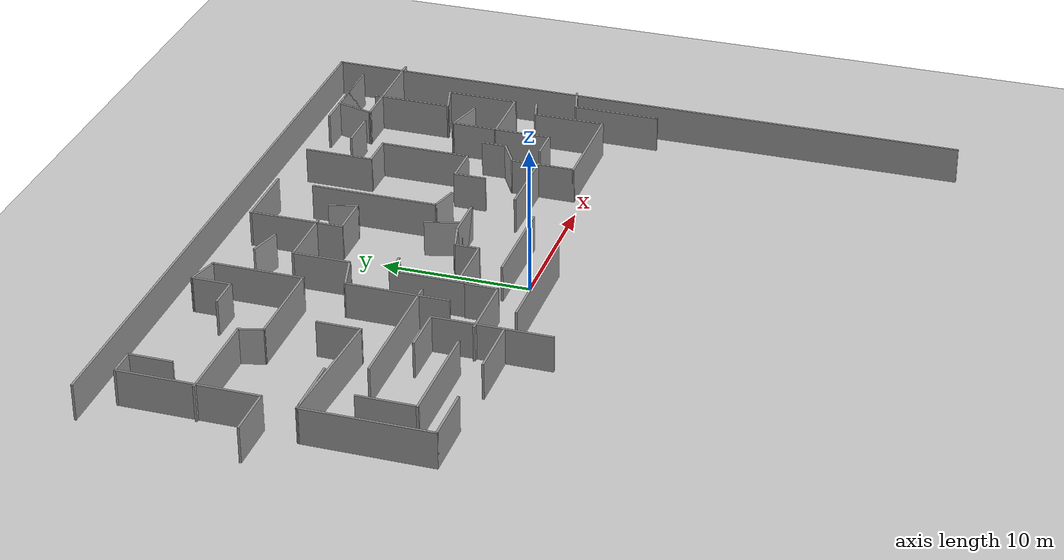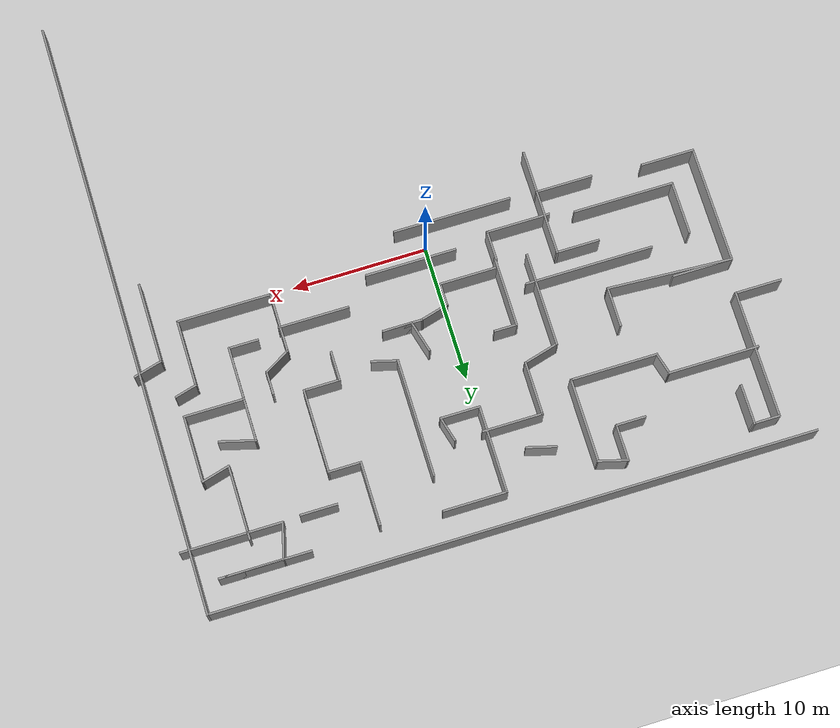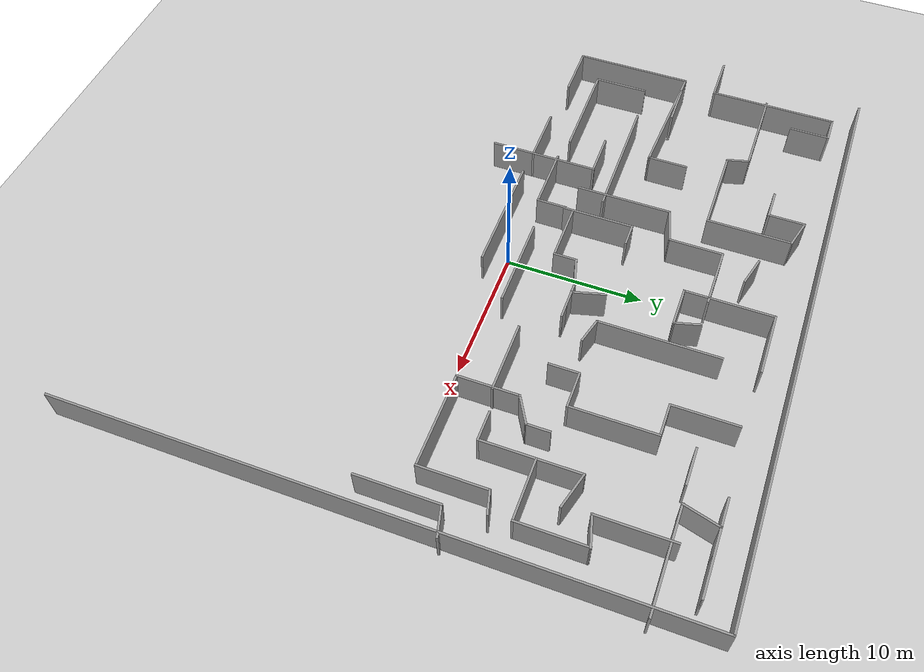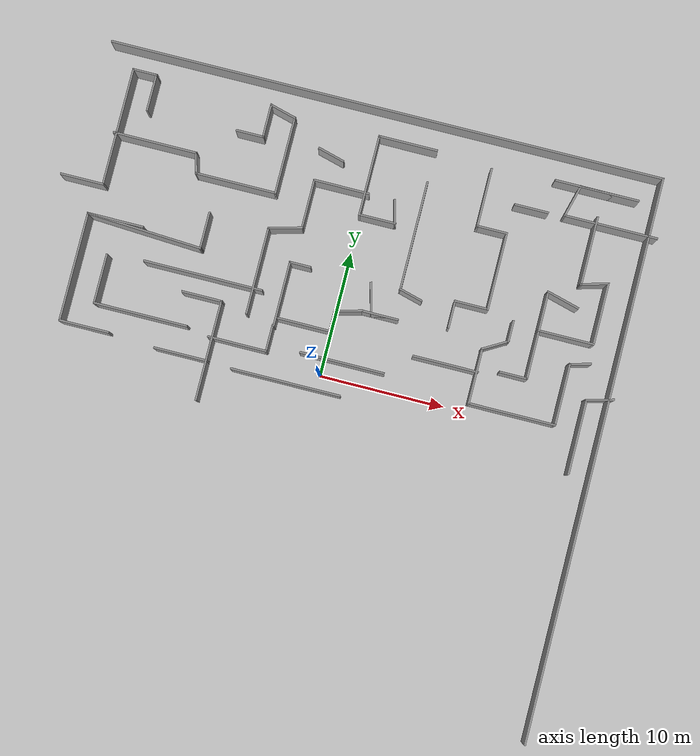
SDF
<sdf version="1.7">
 <world name="default">
  <model name="ground_plane">
   <static>1</static>
   <link name="link">
    <collision name="collision">
     <geometry><plane><normal>0 0 1</normal><size>100 100</size></plane></geometry>
     <surface>
      <contact><collide_bitmask>65535</collide_bitmask></contact>
      <friction><ode><mu>100</mu><mu2>50</mu2></ode></friction>
     </surface>
    </collision>
    <visual name="visual">
     <cast_shadows>0</cast_shadows>
     <geometry><plane><normal>0 0 1</normal><size>100 100</size></plane></geometry>
     <material>
      <script><uri>file://media/materials/scripts/gazebo.material</uri><name>Gazebo/Grey</name></script>
     </material>
    </visual>
   </link>
  </model>
  <model name="Untitled">
   <pose>-0.253478 -1.44353 0 0 -0 0</pose>
   <link name="Wall_100">
    <collision name="Wall_100_Collision">
     <geometry><box><size>2.25 0.15 2.5</size></box></geometry>
     <pose>0 0 1.25 0 -0 0</pose>
    </collision>
    <visual name="Wall_100_Visual">
     <pose>0 0 1.25 0 -0 0</pose>
     <geometry><box><size>2.25 0.15 2.5</size></box></geometry>
     <material>
      <script><uri>file://media/materials/scripts/gazebo.material</uri><name>Gazebo/Grey</name></script>
      <ambient>1 1 1 1</ambient>
     </material>
     <meta><layer>0</layer></meta>
    </visual>
    <pose>1.22343 6.73772 0 0 -0 0.261799</pose>
   </link>
   <link name="Wall_101">
    <collision name="Wall_101_Collision">
     <geometry><box><size>3 0.15 2.5</size></box></geometry>
     <pose>0 0 1.25 0 -0 0</pose>
    </collision>
    <visual name="Wall_101_Visual">
     <pose>0 0 1.25 0 -0 0</pose>
     <geometry><box><size>3 0.15 2.5</size></box></geometry>
     <material>
      <script><uri>file://media/materials/scripts/gazebo.material</uri><name>Gazebo/Grey</name></script>
      <ambient>1 1 1 1</ambient>
     </material>
     <meta><layer>0</layer></meta>
    </visual>
    <pose>3.66266 7.00948 0 0 -0 0</pose>
   </link>
   <link name="Wall_102">
    <collision name="Wall_102_Collision">
     <geometry><box><size>2.25 0.15 2.5</size></box></geometry>
     <pose>0 0 1.25 0 -0 0</pose>
    </collision>
    <visual name="Wall_102_Visual">
     <pose>0 0 1.25 0 -0 0</pose>
     <geometry><box><size>2.25 0.15 2.5</size></box></geometry>
     <material>
      <script><uri>file://media/materials/scripts/gazebo.material</uri><name>Gazebo/Grey</name></script>
      <ambient>1 1 1 1</ambient>
     </material>
     <meta><layer>0</layer></meta>
    </visual>
    <pose>4.03766 7.00948 0 0 -0 3.14159</pose>
   </link>
   <link name="Wall_103">
    <collision name="Wall_103_Collision">
     <geometry><box><size>2.5 0.15 2.5</size></box></geometry>
     <pose>0 0 1.25 0 -0 0</pose>
    </collision>
    <visual name="Wall_103_Visual">
     <pose>0 0 1.25 0 -0 0</pose>
     <geometry><box><size>2.5 0.15 2.5</size></box></geometry>
     <material>
      <script><uri>file://media/materials/scripts/gazebo.material</uri><name>Gazebo/Grey</name></script>
      <ambient>1 1 1 1</ambient>
     </material>
     <meta><layer>0</layer></meta>
    </visual>
    <pose>2.68354 8.14444 0 0 -0 1.8326</pose>
   </link>
   <link name="Wall_105">
    <collision name="Wall_105_Collision">
     <geometry><box><size>7.5 0.15 2.5</size></box></geometry>
     <pose>0 0 1.25 0 -0 0</pose>
    </collision>
    <visual name="Wall_105_Visual">
     <pose>0 0 1.25 0 -0 0</pose>
     <geometry><box><size>7.5 0.15 2.5</size></box></geometry>
     <material>
      <script><uri>file://media/materials/scripts/gazebo.material</uri><name>Gazebo/Grey</name></script>
      <ambient>1 1 1 1</ambient>
     </material>
     <meta><layer>0</layer></meta>
    </visual>
    <pose>-14.3033 2.52656 0 0 -0 3.14159</pose>
   </link>
   <link name="Wall_106">
    <collision name="Wall_106_Collision">
     <geometry><box><size>4 0.15 2.5</size></box></geometry>
     <pose>0 0 1.25 0 -0 0</pose>
    </collision>
    <visual name="Wall_106_Visual">
     <pose>0 0 1.25 0 -0 0</pose>
     <geometry><box><size>4 0.15 2.5</size></box></geometry>
     <material>
      <script><uri>file://media/materials/scripts/gazebo.material</uri><name>Gazebo/Grey</name></script>
      <ambient>1 1 1 1</ambient>
     </material>
     <meta><layer>0</layer></meta>
    </visual>
    <pose>-17.9783 4.45156 0 0 -0 1.5708</pose>
   </link>
   <link name="Wall_108">
    <collision name="Wall_108_Collision">
     <geometry><box><size>5.25 0.15 2.5</size></box></geometry>
     <pose>0 0 1.25 0 -0 0</pose>
    </collision>
    <visual name="Wall_108_Visual">
     <pose>0 0 1.25 0 -0 0</pose>
     <geometry><box><size>5.25 0.15 2.5</size></box></geometry>
     <material>
      <script><uri>file://media/materials/scripts/gazebo.material</uri><name>Gazebo/Grey</name></script>
      <ambient>1 1 1 1</ambient>
     </material>
     <meta><layer>0</layer></meta>
    </visual>
    <pose>9.51405 4.58523 0 0 -0 0</pose>
   </link>
   <link name="Wall_110">
    <collision name="Wall_110_Collision">
     <geometry><box><size>4.75 0.15 2.5</size></box></geometry>
     <pose>0 0 1.25 0 -0 0</pose>
    </collision>
    <visual name="Wall_110_Visual">
     <pose>0 0 1.25 0 -0 0</pose>
     <geometry><box><size>4.75 0.15 2.5</size></box></geometry>
     <material>
      <script><uri>file://media/materials/scripts/gazebo.material</uri><name>Gazebo/Grey</name></script>
      <ambient>1 1 1 1</ambient>
     </material>
     <meta><layer>0</layer></meta>
    </visual>
    <pose>2.5118 20.5868 0 0 -0 3.14159</pose>
   </link>
   <link name="Wall_111">
    <collision name="Wall_111_Collision">
     <geometry><box><size>6.5 0.15 2.5</size></box></geometry>
     <pose>0 0 1.25 0 -0 0</pose>
    </collision>
    <visual name="Wall_111_Visual">
     <pose>0 0 1.25 0 -0 0</pose>
     <geometry><box><size>6.5 0.15 2.5</size></box></geometry>
     <material>
      <script><uri>file://media/materials/scripts/gazebo.material</uri><name>Gazebo/Grey</name></script>
      <ambient>1 1 1 1</ambient>
     </material>
     <meta><layer>0</layer></meta>
    </visual>
    <pose>0.211799 17.4118 0 0 -0 -1.5708</pose>
   </link>
   <link name="Wall_112">
    <collision name="Wall_112_Collision">
     <geometry><box><size>3 0.15 2.5</size></box></geometry>
     <pose>0 0 1.25 0 -0 0</pose>
    </collision>
    <visual name="Wall_112_Visual">
     <pose>0 0 1.25 0 -0 0</pose>
     <geometry><box><size>3 0.15 2.5</size></box></geometry>
     <material>
      <script><uri>file://media/materials/scripts/gazebo.material</uri><name>Gazebo/Grey</name></script>
      <ambient>1 1 1 1</ambient>
     </material>
     <meta><layer>0</layer></meta>
    </visual>
    <pose>1.6368 14.2368 0 0 -0 0</pose>
   </link>
   <link name="Wall_113">
    <collision name="Wall_113_Collision">
     <geometry><box><size>2 0.15 2.5</size></box></geometry>
     <pose>0 0 1.25 0 -0 0</pose>
    </collision>
    <visual name="Wall_113_Visual">
     <pose>0 0 1.25 0 -0 0</pose>
     <geometry><box><size>2 0.15 2.5</size></box></geometry>
     <material>
      <script><uri>file://media/materials/scripts/gazebo.material</uri><name>Gazebo/Grey</name></script>
      <ambient>1 1 1 1</ambient>
     </material>
     <meta><layer>0</layer></meta>
    </visual>
    <pose>2.82239 15.1302 0 0 -0 1.8326</pose>
   </link>
   <link name="Wall_115">
    <collision name="Wall_115_Collision">
     <geometry><box><size>44.4115 0.15 2.5</size></box></geometry>
     <pose>0 0 1.25 0 -0 0</pose>
    </collision>
    <visual name="Wall_115_Visual">
     <pose>0 0 1.25 0 -0 0</pose>
     <geometry><box><size>44.4115 0.15 2.5</size></box></geometry>
     <material>
      <script><uri>file://media/materials/scripts/gazebo.material</uri><name>Gazebo/Grey</name></script>
      <ambient>1 1 1 1</ambient>
     </material>
     <meta><layer>0</layer></meta>
    </visual>
    <pose>0.273353 22.739 0 0 -0 0</pose>
   </link>
   <link name="Wall_117">
    <collision name="Wall_117_Collision">
     <geometry><box><size>2.75 0.15 2.5</size></box></geometry>
     <pose>0 0 1.25 0 -0 0</pose>
    </collision>
    <visual name="Wall_117_Visual">
     <pose>0 0 1.25 0 -0 0</pose>
     <geometry><box><size>2.75 0.15 2.5</size></box></geometry>
     <material>
      <script><uri>file://media/materials/scripts/gazebo.material</uri><name>Gazebo/Grey</name></script>
      <ambient>1 1 1 1</ambient>
     </material>
     <meta><layer>0</layer></meta>
    </visual>
    <pose>13.0566 17.9666 0 0 -0 3.14159</pose>
   </link>
   <link name="Wall_119">
    <collision name="Wall_119_Collision">
     <geometry><box><size>2.25 0.15 2.5</size></box></geometry>
     <pose>0 0 1.25 0 -0 0</pose>
    </collision>
    <visual name="Wall_119_Visual">
     <pose>0 0 1.25 0 -0 0</pose>
     <geometry><box><size>2.25 0.15 2.5</size></box></geometry>
     <material>
      <script><uri>file://media/materials/scripts/gazebo.material</uri><name>Gazebo/Grey</name></script>
      <ambient>1 1 1 1</ambient>
     </material>
     <meta><layer>0</layer></meta>
    </visual>
    <pose>-3.06372 18.2563 0 0 -0 -0.261799</pose>
   </link>
   <link name="Wall_144">
    <collision name="Wall_144_Collision">
     <geometry><box><size>4.25 0.15 2.5</size></box></geometry>
     <pose>0 0 1.25 0 -0 0</pose>
    </collision>
    <visual name="Wall_144_Visual">
     <pose>0 0 1.25 0 -0 0</pose>
     <geometry><box><size>4.25 0.15 2.5</size></box></geometry>
     <material>
      <script><uri>file://media/materials/scripts/gazebo.material</uri><name>Gazebo/Grey</name></script>
      <ambient>1 1 1 1</ambient>
     </material>
     <meta><layer>0</layer></meta>
    </visual>
    <pose>-10.5167 0.304825 0 0 -0 0</pose>
   </link>
   <link name="Wall_146">
    <collision name="Wall_146_Collision">
     <geometry><box><size>8 0.15 2.5</size></box></geometry>
     <pose>0 0 1.25 0 -0 0</pose>
    </collision>
    <visual name="Wall_146_Visual">
     <pose>0 0 1.25 0 -0 0</pose>
     <geometry><box><size>8 0.15 2.5</size></box></geometry>
     <material>
      <script><uri>file://media/materials/scripts/gazebo.material</uri><name>Gazebo/Grey</name></script>
      <ambient>1 1 1 1</ambient>
     </material>
     <meta><layer>0</layer></meta>
    </visual>
    <pose>-8.46674 1.12983 0 0 -0 1.5708</pose>
   </link>
   <link name="Wall_147">
    <collision name="Wall_147_Collision">
     <geometry><box><size>3.25 0.15 2.5</size></box></geometry>
     <pose>0 0 1.25 0 -0 0</pose>
    </collision>
    <visual name="Wall_147_Visual">
     <pose>0 0 1.25 0 -0 0</pose>
     <geometry><box><size>3.25 0.15 2.5</size></box></geometry>
     <material>
      <script><uri>file://media/materials/scripts/gazebo.material</uri><name>Gazebo/Grey</name></script>
      <ambient>1 1 1 1</ambient>
     </material>
     <meta><layer>0</layer></meta>
    </visual>
    <pose>-10.0167 5.05482 0 0 -0 3.14159</pose>
   </link>
   <link name="Wall_149">
    <collision name="Wall_149_Collision">
     <geometry><box><size>4.75 0.15 2.5</size></box></geometry>
     <pose>0 0 1.25 0 -0 0</pose>
    </collision>
    <visual name="Wall_149_Visual">
     <pose>0 0 1.25 0 -0 0</pose>
     <geometry><box><size>4.75 0.15 2.5</size></box></geometry>
     <material>
      <script><uri>file://media/materials/scripts/gazebo.material</uri><name>Gazebo/Grey</name></script>
      <ambient>1 1 1 1</ambient>
     </material>
     <meta><layer>0</layer></meta>
    </visual>
    <pose>-6.45675 2.15225 0 0 -0 0</pose>
   </link>
   <link name="Wall_150">
    <collision name="Wall_150_Collision">
     <geometry><box><size>2.25 0.15 2.5</size></box></geometry>
     <pose>0 0 1.25 0 -0 0</pose>
    </collision>
    <visual name="Wall_150_Visual">
     <pose>0 0 1.25 0 -0 0</pose>
     <geometry><box><size>2.25 0.15 2.5</size></box></geometry>
     <material>
      <script><uri>file://media/materials/scripts/gazebo.material</uri><name>Gazebo/Grey</name></script>
      <ambient>1 1 1 1</ambient>
     </material>
     <meta><layer>0</layer></meta>
    </visual>
    <pose>-4.15675 3.20225 0 0 -0 1.5708</pose>
   </link>
   <link name="Wall_166">
    <collision name="Wall_166_Collision">
     <geometry><box><size>6 0.15 2.5</size></box></geometry>
     <pose>0 0 1.25 0 -0 0</pose>
    </collision>
    <visual name="Wall_166_Visual">
     <pose>0 0 1.25 0 -0 0</pose>
     <geometry><box><size>6 0.15 2.5</size></box></geometry>
     <material>
      <script><uri>file://media/materials/scripts/gazebo.material</uri><name>Gazebo/Grey</name></script>
      <ambient>1 1 1 1</ambient>
     </material>
     <meta><layer>0</layer></meta>
    </visual>
    <pose>20.7198 1.61493 0 0 -0 1.5708</pose>
   </link>
   <link name="Wall_167">
    <collision name="Wall_167_Collision">
     <geometry><box><size>2.25 0.15 2.5</size></box></geometry>
     <pose>0 0 1.25 0 -0 0</pose>
    </collision>
    <visual name="Wall_167_Visual">
     <pose>0 0 1.25 0 -0 0</pose>
     <geometry><box><size>2.25 0.15 2.5</size></box></geometry>
     <material>
      <script><uri>file://media/materials/scripts/gazebo.material</uri><name>Gazebo/Grey</name></script>
      <ambient>1 1 1 1</ambient>
     </material>
     <meta><layer>0</layer></meta>
    </visual>
    <pose>21.734 4.81169 0 0 -0 0.261799</pose>
   </link>
   <link name="Wall_175">
    <collision name="Wall_175_Collision">
     <geometry><box><size>5.5 0.15 2.5</size></box></geometry>
     <pose>0 0 1.25 0 -0 0</pose>
    </collision>
    <visual name="Wall_175_Visual">
     <pose>0 0 1.25 0 -0 0</pose>
     <geometry><box><size>5.5 0.15 2.5</size></box></geometry>
     <material>
      <script><uri>file://media/materials/scripts/gazebo.material</uri><name>Gazebo/Grey</name></script>
      <ambient>1 1 1 1</ambient>
     </material>
     <meta><layer>0</layer></meta>
    </visual>
    <pose>18.1932 15.8531 0 0 -0 -1.5708</pose>
   </link>
   <link name="Wall_176">
    <collision name="Wall_176_Collision">
     <geometry><box><size>2.25 0.15 2.5</size></box></geometry>
     <pose>0 0 1.25 0 -0 0</pose>
    </collision>
    <visual name="Wall_176_Visual">
     <pose>0 0 1.25 0 -0 0</pose>
     <geometry><box><size>2.25 0.15 2.5</size></box></geometry>
     <material>
      <script><uri>file://media/materials/scripts/gazebo.material</uri><name>Gazebo/Grey</name></script>
      <ambient>1 1 1 1</ambient>
     </material>
     <meta><layer>0</layer></meta>
    </visual>
    <pose>19.2074 13.4498 0 0 -0 0.261799</pose>
   </link>
   <link name="Wall_177">
    <collision name="Wall_177_Collision">
     <geometry><box><size>5 0.15 2.5</size></box></geometry>
     <pose>0 0 1.25 0 -0 0</pose>
    </collision>
    <visual name="Wall_177_Visual">
     <pose>0 0 1.25 0 -0 0</pose>
     <geometry><box><size>5 0.15 2.5</size></box></geometry>
     <material>
      <script><uri>file://media/materials/scripts/gazebo.material</uri><name>Gazebo/Grey</name></script>
      <ambient>1 1 1 1</ambient>
     </material>
     <meta><layer>0</layer></meta>
    </visual>
    <pose>20.2216 11.2966 0 0 -0 -1.5708</pose>
   </link>
   <link name="Wall_178">
    <collision name="Wall_178_Collision">
     <geometry><box><size>4.5 0.15 2.5</size></box></geometry>
     <pose>0 0 1.25 0 -0 0</pose>
    </collision>
    <visual name="Wall_178_Visual">
     <pose>0 0 1.25 0 -0 0</pose>
     <geometry><box><size>4.5 0.15 2.5</size></box></geometry>
     <material>
      <script><uri>file://media/materials/scripts/gazebo.material</uri><name>Gazebo/Grey</name></script>
      <ambient>1 1 1 1</ambient>
     </material>
     <meta><layer>0</layer></meta>
    </visual>
    <pose>18.0466 8.87161 0 0 -0 3.14159</pose>
   </link>
   <link name="Wall_179">
    <collision name="Wall_179_Collision">
     <geometry><box><size>4 0.15 2.5</size></box></geometry>
     <pose>0 0 1.25 0 -0 0</pose>
    </collision>
    <visual name="Wall_179_Visual">
     <pose>0 0 1.25 0 -0 0</pose>
     <geometry><box><size>4 0.15 2.5</size></box></geometry>
     <material>
      <script><uri>file://media/materials/scripts/gazebo.material</uri><name>Gazebo/Grey</name></script>
      <ambient>1 1 1 1</ambient>
     </material>
     <meta><layer>0</layer></meta>
    </visual>
    <pose>15.8716 6.94661 0 0 -0 -1.5708</pose>
   </link>
   <link name="Wall_180">
    <collision name="Wall_180_Collision">
     <geometry><box><size>2.25 0.15 2.5</size></box></geometry>
     <pose>0 0 1.25 0 -0 0</pose>
    </collision>
    <visual name="Wall_180_Visual">
     <pose>0 0 1.25 0 -0 0</pose>
     <geometry><box><size>2.25 0.15 2.5</size></box></geometry>
     <material>
      <script><uri>file://media/materials/scripts/gazebo.material</uri><name>Gazebo/Grey</name></script>
      <ambient>1 1 1 1</ambient>
     </material>
     <meta><layer>0</layer></meta>
    </visual>
    <pose>14.8216 5.02161 0 0 -0 3.14159</pose>
   </link>
   <link name="Wall_182">
    <collision name="Wall_182_Collision">
     <geometry><box><size>3.25 0.15 2.5</size></box></geometry>
     <pose>0 0 1.25 0 -0 0</pose>
    </collision>
    <visual name="Wall_182_Visual">
     <pose>0 0 1.25 0 -0 0</pose>
     <geometry><box><size>3.25 0.15 2.5</size></box></geometry>
     <material>
      <script><uri>file://media/materials/scripts/gazebo.material</uri><name>Gazebo/Grey</name></script>
      <ambient>1 1 1 1</ambient>
     </material>
     <meta><layer>0</layer></meta>
    </visual>
    <pose>15.8716 10.4216 0 0 -0 1.5708</pose>
   </link>
   <link name="Wall_183">
    <collision name="Wall_183_Collision">
     <geometry><box><size>2.75 0.15 2.5</size></box></geometry>
     <pose>0 0 1.25 0 -0 0</pose>
    </collision>
    <visual name="Wall_183_Visual">
     <pose>0 0 1.25 0 -0 0</pose>
     <geometry><box><size>2.75 0.15 2.5</size></box></geometry>
     <material>
      <script><uri>file://media/materials/scripts/gazebo.material</uri><name>Gazebo/Grey</name></script>
      <ambient>1 1 1 1</ambient>
     </material>
     <meta><layer>0</layer></meta>
    </visual>
    <pose>17.1273 11.6351 0 0 -0 -0.261799</pose>
   </link>
   <link name="Wall_185">
    <collision name="Wall_185_Collision">
     <geometry><box><size>4.75 0.15 2.5</size></box></geometry>
     <pose>0 0 1.25 0 -0 0</pose>
    </collision>
    <visual name="Wall_185_Visual">
     <pose>0 0 1.25 0 -0 0</pose>
     <geometry><box><size>4.75 0.15 2.5</size></box></geometry>
     <material>
      <script><uri>file://media/materials/scripts/gazebo.material</uri><name>Gazebo/Grey</name></script>
      <ambient>1 1 1 1</ambient>
     </material>
     <meta><layer>0</layer></meta>
    </visual>
    <pose>9.30346 17.9125 0 0 -0 -1.5708</pose>
   </link>
   <link name="Wall_186">
    <collision name="Wall_186_Collision">
     <geometry><box><size>2.5 0.15 2.5</size></box></geometry>
     <pose>0 0 1.25 0 -0 0</pose>
    </collision>
    <visual name="Wall_186_Visual">
     <pose>0 0 1.25 0 -0 0</pose>
     <geometry><box><size>2.5 0.15 2.5</size></box></geometry>
     <material>
      <script><uri>file://media/materials/scripts/gazebo.material</uri><name>Gazebo/Grey</name></script>
      <ambient>1 1 1 1</ambient>
     </material>
     <meta><layer>0</layer></meta>
    </visual>
    <pose>10.4785 15.6125 0 0 -0 0</pose>
   </link>
   <link name="Wall_187">
    <collision name="Wall_187_Collision">
     <geometry><box><size>6.25 0.15 2.5</size></box></geometry>
     <pose>0 0 1.25 0 -0 0</pose>
    </collision>
    <visual name="Wall_187_Visual">
     <pose>0 0 1.25 0 -0 0</pose>
     <geometry><box><size>6.25 0.15 2.5</size></box></geometry>
     <material>
      <script><uri>file://media/materials/scripts/gazebo.material</uri><name>Gazebo/Grey</name></script>
      <ambient>1 1 1 1</ambient>
     </material>
     <meta><layer>0</layer></meta>
    </visual>
    <pose>11.6535 12.5625 0 0 -0 -1.5708</pose>
   </link>
   <link name="Wall_188">
    <collision name="Wall_188_Collision">
     <geometry><box><size>2.75 0.15 2.5</size></box></geometry>
     <pose>0 0 1.25 0 -0 0</pose>
    </collision>
    <visual name="Wall_188_Visual">
     <pose>0 0 1.25 0 -0 0</pose>
     <geometry><box><size>2.75 0.15 2.5</size></box></geometry>
     <material>
      <script><uri>file://media/materials/scripts/gazebo.material</uri><name>Gazebo/Grey</name></script>
      <ambient>1 1 1 1</ambient>
     </material>
     <meta><layer>0</layer></meta>
    </visual>
    <pose>10.3535 9.51246 0 0 -0 3.14159</pose>
   </link>
   <link name="Wall_189">
    <collision name="Wall_189_Collision">
     <geometry><box><size>2.25 0.15 2.5</size></box></geometry>
     <pose>0 0 1.25 0 -0 0</pose>
    </collision>
    <visual name="Wall_189_Visual">
     <pose>0 0 1.25 0 -0 0</pose>
     <geometry><box><size>2.25 0.15 2.5</size></box></geometry>
     <material>
      <script><uri>file://media/materials/scripts/gazebo.material</uri><name>Gazebo/Grey</name></script>
      <ambient>1 1 1 1</ambient>
     </material>
     <meta><layer>0</layer></meta>
    </visual>
    <pose>9.05346 8.46246 0 0 -0 -1.5708</pose>
   </link>
   <link name="Wall_19">
    <collision name="Wall_19_Collision">
     <geometry><box><size>3 0.15 2.5</size></box></geometry>
     <pose>0 0 1.25 0 -0 0</pose>
    </collision>
    <visual name="Wall_19_Visual">
     <pose>0 0 1.25 0 -0 0</pose>
     <geometry><box><size>3 0.15 2.5</size></box></geometry>
     <material>
      <script><uri>file://media/materials/scripts/gazebo.material</uri><name>Gazebo/Grey</name></script>
      <ambient>1 1 1 1</ambient>
     </material>
     <meta><layer>0</layer></meta>
    </visual>
    <pose>-17.8336 19.5788 0 0 -0 1.5708</pose>
   </link>
   <link name="Wall_191">
    <collision name="Wall_191_Collision">
     <geometry><box><size>3 0.15 2.5</size></box></geometry>
     <pose>0 0 1.25 0 -0 0</pose>
    </collision>
    <visual name="Wall_191_Visual">
     <pose>0 0 1.25 0 -0 0</pose>
     <geometry><box><size>3 0.15 2.5</size></box></geometry>
     <material>
      <script><uri>file://media/materials/scripts/gazebo.material</uri><name>Gazebo/Grey</name></script>
      <ambient>1 1 1 1</ambient>
     </material>
     <meta><layer>0</layer></meta>
    </visual>
    <pose>-11.0962 10.0849 0 0 -0 -1.5708</pose>
   </link>
   <link name="Wall_192">
    <collision name="Wall_192_Collision">
     <geometry><box><size>9.28666 0.15 2.5</size></box></geometry>
     <pose>0 0 1.25 0 -0 0</pose>
    </collision>
    <visual name="Wall_192_Visual">
     <pose>0 0 1.25 0 -0 0</pose>
     <geometry><box><size>9.28666 0.15 2.5</size></box></geometry>
     <material>
      <script><uri>file://media/materials/scripts/gazebo.material</uri><name>Gazebo/Grey</name></script>
      <ambient>1 1 1 1</ambient>
     </material>
     <meta><layer>0</layer></meta>
    </visual>
    <pose>-15.6573 8.91517 0 0 -0 3.08568</pose>
   </link>
   <link name="Wall_193">
    <collision name="Wall_193_Collision">
     <geometry><box><size>8.75 0.15 2.5</size></box></geometry>
     <pose>0 0 1.25 0 -0 0</pose>
    </collision>
    <visual name="Wall_193_Visual">
     <pose>0 0 1.25 0 -0 0</pose>
     <geometry><box><size>8.75 0.15 2.5</size></box></geometry>
     <material>
      <script><uri>file://media/materials/scripts/gazebo.material</uri><name>Gazebo/Grey</name></script>
      <ambient>1 1 1 1</ambient>
     </material>
     <meta><layer>0</layer></meta>
    </visual>
    <pose>-20.2185 4.87047 0 0 -0 -1.5708</pose>
   </link>
   <link name="Wall_20">
    <collision name="Wall_20_Collision">
     <geometry><box><size>2 0.15 2.5</size></box></geometry>
     <pose>0 0 1.25 0 -0 0</pose>
    </collision>
    <visual name="Wall_20_Visual">
     <pose>0 0 1.25 0 -0 0</pose>
     <geometry><box><size>2 0.15 2.5</size></box></geometry>
     <material>
      <script><uri>file://media/materials/scripts/gazebo.material</uri><name>Gazebo/Grey</name></script>
      <ambient>1 1 1 1</ambient>
     </material>
     <meta><layer>0</layer></meta>
    </visual>
    <pose>-18.7586 21.0038 0 0 -0 3.14159</pose>
   </link>
   <link name="Wall_21">
    <collision name="Wall_21_Collision">
     <geometry><box><size>9.5 0.15 2.5</size></box></geometry>
     <pose>0 0 1.25 0 -0 0</pose>
    </collision>
    <visual name="Wall_21_Visual">
     <pose>0 0 1.25 0 -0 0</pose>
     <geometry><box><size>9.5 0.15 2.5</size></box></geometry>
     <material>
      <script><uri>file://media/materials/scripts/gazebo.material</uri><name>Gazebo/Grey</name></script>
      <ambient>1 1 1 1</ambient>
     </material>
     <meta><layer>0</layer></meta>
    </visual>
    <pose>-19.6836 16.3288 0 0 -0 -1.5708</pose>
   </link>
   <link name="Wall_22">
    <collision name="Wall_22_Collision">
     <geometry><box><size>3.5 0.15 2.5</size></box></geometry>
     <pose>0 0 1.25 0 -0 0</pose>
    </collision>
    <visual name="Wall_22_Visual">
     <pose>0 0 1.25 0 -0 0</pose>
     <geometry><box><size>3.5 0.15 2.5</size></box></geometry>
     <material>
      <script><uri>file://media/materials/scripts/gazebo.material</uri><name>Gazebo/Grey</name></script>
      <ambient>1 1 1 1</ambient>
     </material>
     <meta><layer>0</layer></meta>
    </visual>
    <pose>-21.3586 11.6538 0 0 -0 3.14159</pose>
   </link>
   <link name="Wall_24">
    <collision name="Wall_24_Collision">
     <geometry><box><size>6.75 0.15 2.5</size></box></geometry>
     <pose>0 0 1.25 0 -0 0</pose>
    </collision>
    <visual name="Wall_24_Visual">
     <pose>0 0 1.25 0 -0 0</pose>
     <geometry><box><size>6.75 0.15 2.5</size></box></geometry>
     <material>
      <script><uri>file://media/materials/scripts/gazebo.material</uri><name>Gazebo/Grey</name></script>
      <ambient>1 1 1 1</ambient>
     </material>
     <meta><layer>0</layer></meta>
    </visual>
    <pose>-16.5923 15.8144 0 0 -0 0</pose>
   </link>
   <link name="Wall_25">
    <collision name="Wall_25_Collision">
     <geometry><box><size>1.75 0.15 2.5</size></box></geometry>
     <pose>0 0 1.25 0 -0 0</pose>
    </collision>
    <visual name="Wall_25_Visual">
     <pose>0 0 1.25 0 -0 0</pose>
     <geometry><box><size>1.75 0.15 2.5</size></box></geometry>
     <material>
      <script><uri>file://media/materials/scripts/gazebo.material</uri><name>Gazebo/Grey</name></script>
      <ambient>1 1 1 1</ambient>
     </material>
     <meta><layer>0</layer></meta>
    </visual>
    <pose>-13.0853 15.0416 0 0 -0 -1.309</pose>
   </link>
   <link name="Wall_26">
    <collision name="Wall_26_Collision">
     <geometry><box><size>6.5 0.15 2.5</size></box></geometry>
     <pose>0 0 1.25 0 -0 0</pose>
    </collision>
    <visual name="Wall_26_Visual">
     <pose>0 0 1.25 0 -0 0</pose>
     <geometry><box><size>6.5 0.15 2.5</size></box></geometry>
     <material>
      <script><uri>file://media/materials/scripts/gazebo.material</uri><name>Gazebo/Grey</name></script>
      <ambient>1 1 1 1</ambient>
     </material>
     <meta><layer>0</layer></meta>
    </visual>
    <pose>-9.70321 14.2689 0 0 -0 0</pose>
   </link>
   <link name="Wall_27">
    <collision name="Wall_27_Collision">
     <geometry><box><size>6.25 0.15 2.5</size></box></geometry>
     <pose>0 0 1.25 0 -0 0</pose>
    </collision>
    <visual name="Wall_27_Visual">
     <pose>0 0 1.25 0 -0 0</pose>
     <geometry><box><size>6.25 0.15 2.5</size></box></geometry>
     <material>
      <script><uri>file://media/materials/scripts/gazebo.material</uri><name>Gazebo/Grey</name></script>
      <ambient>1 1 1 1</ambient>
     </material>
     <meta><layer>0</layer></meta>
    </visual>
    <pose>-6.52821 17.3189 0 0 -0 1.5708</pose>
   </link>
   <link name="Wall_28">
    <collision name="Wall_28_Collision">
     <geometry><box><size>2.25 0.15 2.5</size></box></geometry>
     <pose>0 0 1.25 0 -0 0</pose>
    </collision>
    <visual name="Wall_28_Visual">
     <pose>0 0 1.25 0 -0 0</pose>
     <geometry><box><size>2.25 0.15 2.5</size></box></geometry>
     <material>
      <script><uri>file://media/materials/scripts/gazebo.material</uri><name>Gazebo/Grey</name></script>
      <ambient>1 1 1 1</ambient>
     </material>
     <meta><layer>0</layer></meta>
    </visual>
    <pose>-7.54243 20.6407 0 0 -0 2.87979</pose>
   </link>
   <link name="Wall_29">
    <collision name="Wall_29_Collision">
     <geometry><box><size>2.75 0.15 2.5</size></box></geometry>
     <pose>0 0 1.25 0 -0 0</pose>
    </collision>
    <visual name="Wall_29_Visual">
     <pose>0 0 1.25 0 -0 0</pose>
     <geometry><box><size>2.75 0.15 2.5</size></box></geometry>
     <material>
      <script><uri>file://media/materials/scripts/gazebo.material</uri><name>Gazebo/Grey</name></script>
      <ambient>1 1 1 1</ambient>
     </material>
     <meta><layer>0</layer></meta>
    </visual>
    <pose>-8.55665 19.6124 0 0 -0 -1.5708</pose>
   </link>
   <link name="Wall_30">
    <collision name="Wall_30_Collision">
     <geometry><box><size>2.25 0.15 2.5</size></box></geometry>
     <pose>0 0 1.25 0 -0 0</pose>
    </collision>
    <visual name="Wall_30_Visual">
     <pose>0 0 1.25 0 -0 0</pose>
     <geometry><box><size>2.25 0.15 2.5</size></box></geometry>
     <material>
      <script><uri>file://media/materials/scripts/gazebo.material</uri><name>Gazebo/Grey</name></script>
      <ambient>1 1 1 1</ambient>
     </material>
     <meta><layer>0</layer></meta>
    </visual>
    <pose>-9.60665 18.3124 0 0 -0 3.14159</pose>
   </link>
   <link name="Wall_32">
    <collision name="Wall_32_Collision">
     <geometry><box><size>4.5 0.15 2.5</size></box></geometry>
     <pose>0 0 1.25 0 -0 0</pose>
    </collision>
    <visual name="Wall_32_Visual">
     <pose>0 0 1.25 0 -0 0</pose>
     <geometry><box><size>4.5 0.15 2.5</size></box></geometry>
     <material>
      <script><uri>file://media/materials/scripts/gazebo.material</uri><name>Gazebo/Grey</name></script>
      <ambient>1 1 1 1</ambient>
     </material>
     <meta><layer>0</layer></meta>
    </visual>
    <pose>-1.66771 16.0015 0 0 -0 3.14159</pose>
   </link>
   <link name="Wall_33">
    <collision name="Wall_33_Collision">
     <geometry><box><size>4 0.15 2.5</size></box></geometry>
     <pose>0 0 1.25 0 -0 0</pose>
    </collision>
    <visual name="Wall_33_Visual">
     <pose>0 0 1.25 0 -0 0</pose>
     <geometry><box><size>4 0.15 2.5</size></box></geometry>
     <material>
      <script><uri>file://media/materials/scripts/gazebo.material</uri><name>Gazebo/Grey</name></script>
      <ambient>1 1 1 1</ambient>
     </material>
     <meta><layer>0</layer></meta>
    </visual>
    <pose>-3.84271 14.0765 0 0 -0 -1.5708</pose>
   </link>
   <link name="Wall_34">
    <collision name="Wall_34_Collision">
     <geometry><box><size>2.75 0.15 2.5</size></box></geometry>
     <pose>0 0 1.25 0 -0 0</pose>
    </collision>
    <visual name="Wall_34_Visual">
     <pose>0 0 1.25 0 -0 0</pose>
     <geometry><box><size>2.75 0.15 2.5</size></box></geometry>
     <material>
      <script><uri>file://media/materials/scripts/gazebo.material</uri><name>Gazebo/Grey</name></script>
      <ambient>1 1 1 1</ambient>
     </material>
     <meta><layer>0</layer></meta>
    </visual>
    <pose>-5.09841 11.8151 0 0 -0 -2.87979</pose>
   </link>
   <link name="Wall_35">
    <collision name="Wall_35_Collision">
     <geometry><box><size>7 0.15 2.5</size></box></geometry>
     <pose>0 0 1.25 0 -0 0</pose>
    </collision>
    <visual name="Wall_35_Visual">
     <pose>0 0 1.25 0 -0 0</pose>
     <geometry><box><size>7 0.15 2.5</size></box></geometry>
     <material>
      <script><uri>file://media/materials/scripts/gazebo.material</uri><name>Gazebo/Grey</name></script>
      <ambient>1 1 1 1</ambient>
     </material>
     <meta><layer>0</layer></meta>
    </visual>
    <pose>-6.35411 8.0536 0 0 -0 -1.5708</pose>
   </link>
   <link name="Wall_37">
    <collision name="Wall_37_Collision">
     <geometry><box><size>9.5 0.15 2.5</size></box></geometry>
     <pose>0 0 1.25 0 -0 0</pose>
    </collision>
    <visual name="Wall_37_Visual">
     <pose>0 0 1.25 0 -0 0</pose>
     <geometry><box><size>9.5 0.15 2.5</size></box></geometry>
     <material>
      <script><uri>file://media/materials/scripts/gazebo.material</uri><name>Gazebo/Grey</name></script>
      <ambient>1 1 1 1</ambient>
     </material>
     <meta><layer>0</layer></meta>
    </visual>
    <pose>-10.3514 6.64391 0 0 -0 0</pose>
   </link>
   <link name="Wall_39">
    <collision name="Wall_39_Collision">
     <geometry><box><size>8.75 0.15 2.5</size></box></geometry>
     <pose>0 0 1.25 0 -0 0</pose>
    </collision>
    <visual name="Wall_39_Visual">
     <pose>0 0 1.25 0 -0 0</pose>
     <geometry><box><size>8.75 0.15 2.5</size></box></geometry>
     <material>
      <script><uri>file://media/materials/scripts/gazebo.material</uri><name>Gazebo/Grey</name></script>
      <ambient>1 1 1 1</ambient>
     </material>
     <meta><layer>0</layer></meta>
    </visual>
    <pose>-2.11735 0.187152 0 0 -0 0</pose>
   </link>
   <link name="Wall_44">
    <collision name="Wall_44_Collision">
     <geometry><box><size>1.75 0.15 2.5</size></box></geometry>
     <pose>0 0 1.25 0 -0 0</pose>
    </collision>
    <visual name="Wall_44_Visual">
     <pose>0 0 1.25 0 -0 0</pose>
     <geometry><box><size>1.75 0.15 2.5</size></box></geometry>
     <material>
      <script><uri>file://media/materials/scripts/gazebo.material</uri><name>Gazebo/Grey</name></script>
      <ambient>1 1 1 1</ambient>
     </material>
     <meta><layer>0</layer></meta>
    </visual>
    <pose>13.7951 8.27689 0 0 -0 -1.5708</pose>
   </link>
   <link name="Wall_45">
    <collision name="Wall_45_Collision">
     <geometry><box><size>2.25 0.15 2.5</size></box></geometry>
     <pose>0 0 1.25 0 -0 0</pose>
    </collision>
    <visual name="Wall_45_Visual">
     <pose>0 0 1.25 0 -0 0</pose>
     <geometry><box><size>2.25 0.15 2.5</size></box></geometry>
     <material>
      <script><uri>file://media/materials/scripts/gazebo.material</uri><name>Gazebo/Grey</name></script>
      <ambient>1 1 1 1</ambient>
     </material>
     <meta><layer>0</layer></meta>
    </visual>
    <pose>12.8858 6.95189 0 0 -0 -2.61799</pose>
   </link>
   <link name="Wall_46">
    <collision name="Wall_46_Collision">
     <geometry><box><size>4.5 0.15 2.5</size></box></geometry>
     <pose>0 0 1.25 0 -0 0</pose>
    </collision>
    <visual name="Wall_46_Visual">
     <pose>0 0 1.25 0 -0 0</pose>
     <geometry><box><size>4.5 0.15 2.5</size></box></geometry>
     <material>
      <script><uri>file://media/materials/scripts/gazebo.material</uri><name>Gazebo/Grey</name></script>
      <ambient>1 1 1 1</ambient>
     </material>
     <meta><layer>0</layer></meta>
    </visual>
    <pose>11.9765 4.25189 0 0 -0 -1.5708</pose>
   </link>
   <link name="Wall_47">
    <collision name="Wall_47_Collision">
     <geometry><box><size>7 0.15 2.5</size></box></geometry>
     <pose>0 0 1.25 0 -0 0</pose>
    </collision>
    <visual name="Wall_47_Visual">
     <pose>0 0 1.25 0 -0 0</pose>
     <geometry><box><size>7 0.15 2.5</size></box></geometry>
     <material>
      <script><uri>file://media/materials/scripts/gazebo.material</uri><name>Gazebo/Grey</name></script>
      <ambient>1 1 1 1</ambient>
     </material>
     <meta><layer>0</layer></meta>
    </visual>
    <pose>15.4015 2.07689 0 0 -0 0</pose>
   </link>
   <link name="Wall_48">
    <collision name="Wall_48_Collision">
     <geometry><box><size>5 0.15 2.5</size></box></geometry>
     <pose>0 0 1.25 0 -0 0</pose>
    </collision>
    <visual name="Wall_48_Visual">
     <pose>0 0 1.25 0 -0 0</pose>
     <geometry><box><size>5 0.15 2.5</size></box></geometry>
     <material>
      <script><uri>file://media/materials/scripts/gazebo.material</uri><name>Gazebo/Grey</name></script>
      <ambient>1 1 1 1</ambient>
     </material>
     <meta><layer>0</layer></meta>
    </visual>
    <pose>18.8265 4.50189 0 0 -0 1.5708</pose>
   </link>
   <link name="Wall_49">
    <collision name="Wall_49_Collision">
     <geometry><box><size>1.75 0.15 2.5</size></box></geometry>
     <pose>0 0 1.25 0 -0 0</pose>
    </collision>
    <visual name="Wall_49_Visual">
     <pose>0 0 1.25 0 -0 0</pose>
     <geometry><box><size>1.75 0.15 2.5</size></box></geometry>
     <material>
      <script><uri>file://media/materials/scripts/gazebo.material</uri><name>Gazebo/Grey</name></script>
      <ambient>1 1 1 1</ambient>
     </material>
     <meta><layer>0</layer></meta>
    </visual>
    <pose>19.5992 7.13395 0 0 -0 0.261799</pose>
   </link>
   <link name="Wall_51">
    <collision name="Wall_51_Collision">
     <geometry><box><size>8.75 0.15 2.5</size></box></geometry>
     <pose>0 0 1.25 0 -0 0</pose>
    </collision>
    <visual name="Wall_51_Visual">
     <pose>0 0 1.25 0 -0 0</pose>
     <geometry><box><size>8.75 0.15 2.5</size></box></geometry>
     <material>
      <script><uri>file://media/materials/scripts/gazebo.material</uri><name>Gazebo/Grey</name></script>
      <ambient>1 1 1 1</ambient>
     </material>
     <meta><layer>0</layer></meta>
    </visual>
    <pose>4.71822 13.6666 0 0 -0 -1.5708</pose>
   </link>
   <link name="Wall_52">
    <collision name="Wall_52_Collision">
     <geometry><box><size>2 0.15 2.5</size></box></geometry>
     <pose>0 0 1.25 0 -0 0</pose>
    </collision>
    <visual name="Wall_52_Visual">
     <pose>0 0 1.25 0 -0 0</pose>
     <geometry><box><size>2 0.15 2.5</size></box></geometry>
     <material>
      <script><uri>file://media/materials/scripts/gazebo.material</uri><name>Gazebo/Grey</name></script>
      <ambient>1 1 1 1</ambient>
     </material>
     <meta><layer>0</layer></meta>
    </visual>
    <pose>5.6117 9.12722 0 0 -0 -0.261799</pose>
   </link>
   <link name="Wall_54">
    <collision name="Wall_54_Collision">
     <geometry><box><size>4.5 0.15 2.5</size></box></geometry>
     <pose>0 0 1.25 0 -0 0</pose>
    </collision>
    <visual name="Wall_54_Visual">
     <pose>0 0 1.25 0 -0 0</pose>
     <geometry><box><size>4.5 0.15 2.5</size></box></geometry>
     <material>
      <script><uri>file://media/materials/scripts/gazebo.material</uri><name>Gazebo/Grey</name></script>
      <ambient>1 1 1 1</ambient>
     </material>
     <meta><layer>0</layer></meta>
    </visual>
    <pose>-18.0435 9.17047 0 0 -0 3.14159</pose>
   </link>
   <link name="Wall_55">
    <collision name="Wall_55_Collision">
     <geometry><box><size>8.75 0.15 2.5</size></box></geometry>
     <pose>0 0 1.25 0 -0 0</pose>
    </collision>
    <visual name="Wall_55_Visual">
     <pose>0 0 1.25 0 -0 0</pose>
     <geometry><box><size>8.75 0.15 2.5</size></box></geometry>
     <material>
      <script><uri>file://media/materials/scripts/gazebo.material</uri><name>Gazebo/Grey</name></script>
      <ambient>1 1 1 1</ambient>
     </material>
     <meta><layer>0</layer></meta>
    </visual>
    <pose>-20.2185 4.87047 0 0 -0 -1.5708</pose>
   </link>
   <link name="Wall_56">
    <collision name="Wall_56_Collision">
     <geometry><box><size>4 0.15 2.5</size></box></geometry>
     <pose>0 0 1.25 0 -0 0</pose>
    </collision>
    <visual name="Wall_56_Visual">
     <pose>0 0 1.25 0 -0 0</pose>
     <geometry><box><size>4 0.15 2.5</size></box></geometry>
     <material>
      <script><uri>file://media/materials/scripts/gazebo.material</uri><name>Gazebo/Grey</name></script>
      <ambient>1 1 1 1</ambient>
     </material>
     <meta><layer>0</layer></meta>
    </visual>
    <pose>-18.2935 0.570468 0 0 -0 0</pose>
   </link>
   <link name="Wall_64">
    <collision name="Wall_64_Collision">
     <geometry><box><size>6.75 0.15 2.5</size></box></geometry>
     <pose>0 0 1.25 0 -0 0</pose>
    </collision>
    <visual name="Wall_64_Visual">
     <pose>0 0 1.25 0 -0 0</pose>
     <geometry><box><size>6.75 0.15 2.5</size></box></geometry>
     <material>
      <script><uri>file://media/materials/scripts/gazebo.material</uri><name>Gazebo/Grey</name></script>
      <ambient>1 1 1 1</ambient>
     </material>
     <meta><layer>0</layer></meta>
    </visual>
    <pose>1.74862 2.71371 0 0 -0 0</pose>
   </link>
   <link name="Wall_70">
    <collision name="Wall_70_Collision">
     <geometry><box><size>45 0.15 2.5</size></box></geometry>
     <pose>0 0 1.25 0 -0 0</pose>
    </collision>
    <visual name="Wall_70_Visual">
     <pose>0 0 1.25 0 -0 0</pose>
     <geometry><box><size>45 0.15 2.5</size></box></geometry>
     <material>
      <script><uri>file://media/materials/scripts/gazebo.material</uri><name>Gazebo/Grey</name></script>
      <ambient>1 1 1 1</ambient>
     </material>
     <meta><layer>0</layer></meta>
    </visual>
    <pose>22.4041 0.314018 0 0 -0 -1.5708</pose>
   </link>
   <link name="Wall_90">
    <collision name="Wall_90_Collision">
     <geometry><box><size>6.75 0.15 2.5</size></box></geometry>
     <pose>0 0 1.25 0 -0 0</pose>
    </collision>
    <visual name="Wall_90_Visual">
     <pose>0 0 1.25 0 -0 0</pose>
     <geometry><box><size>6.75 0.15 2.5</size></box></geometry>
     <material>
      <script><uri>file://media/materials/scripts/gazebo.material</uri><name>Gazebo/Grey</name></script>
      <ambient>1 1 1 1</ambient>
     </material>
     <meta><layer>0</layer></meta>
    </visual>
    <pose>17.6566 20.5868 0 0 -0 0</pose>
   </link>
   <link name="Wall_91">
    <collision name="Wall_91_Collision">
     <geometry><box><size>4.75 0.15 2.5</size></box></geometry>
     <pose>0 0 1.25 0 -0 0</pose>
    </collision>
    <visual name="Wall_91_Visual">
     <pose>0 0 1.25 0 -0 0</pose>
     <geometry><box><size>4.75 0.15 2.5</size></box></geometry>
     <material>
      <script><uri>file://media/materials/scripts/gazebo.material</uri><name>Gazebo/Grey</name></script>
      <ambient>1 1 1 1</ambient>
     </material>
     <meta><layer>0</layer></meta>
    </visual>
    <pose>18.6566 20.5868 0 0 -0 3.14159</pose>
   </link>
   <link name="Wall_92">
    <collision name="Wall_92_Collision">
     <geometry><box><size>2.75 0.15 2.5</size></box></geometry>
     <pose>0 0 1.25 0 -0 0</pose>
    </collision>
    <visual name="Wall_92_Visual">
     <pose>0 0 1.25 0 -0 0</pose>
     <geometry><box><size>2.75 0.15 2.5</size></box></geometry>
     <material>
      <script><uri>file://media/materials/scripts/gazebo.material</uri><name>Gazebo/Grey</name></script>
      <ambient>1 1 1 1</ambient>
     </material>
     <meta><layer>0</layer></meta>
    </visual>
    <pose>16.0201 19.3311 0 0 -0 -1.8326</pose>
   </link>
   <link name="Wall_93">
    <collision name="Wall_93_Collision">
     <geometry><box><size>7.5 0.15 2.5</size></box></geometry>
     <pose>0 0 1.25 0 -0 0</pose>
    </collision>
    <visual name="Wall_93_Visual">
     <pose>0 0 1.25 0 -0 0</pose>
     <geometry><box><size>7.5 0.15 2.5</size></box></geometry>
     <material>
      <script><uri>file://media/materials/scripts/gazebo.material</uri><name>Gazebo/Grey</name></script>
      <ambient>1 1 1 1</ambient>
     </material>
     <meta><layer>0</layer></meta>
    </visual>
    <pose>19.3586 18.0754 0 0 -0 0</pose>
   </link>
   <link name="Wall_95">
    <collision name="Wall_95_Collision">
     <geometry><box><size>5.25 0.15 2.5</size></box></geometry>
     <pose>0 0 1.25 0 -0 0</pose>
    </collision>
    <visual name="Wall_95_Visual">
     <pose>0 0 1.25 0 -0 0</pose>
     <geometry><box><size>5.25 0.15 2.5</size></box></geometry>
     <material>
      <script><uri>file://media/materials/scripts/gazebo.material</uri><name>Gazebo/Grey</name></script>
      <ambient>1 1 1 1</ambient>
     </material>
     <meta><layer>0</layer></meta>
    </visual>
    <pose>-4.07794 6.76093 0 0 -0 1.5708</pose>
   </link>
   <link name="Wall_96">
    <collision name="Wall_96_Collision">
     <geometry><box><size>1.75 0.15 2.5</size></box></geometry>
     <pose>0 0 1.25 0 -0 0</pose>
    </collision>
    <visual name="Wall_96_Visual">
     <pose>0 0 1.25 0 -0 0</pose>
     <geometry><box><size>1.75 0.15 2.5</size></box></geometry>
     <material>
      <script><uri>file://media/materials/scripts/gazebo.material</uri><name>Gazebo/Grey</name></script>
      <ambient>1 1 1 1</ambient>
     </material>
     <meta><layer>0</layer></meta>
    </visual>
    <pose>-3.27794 9.31093 0 0 -0 0</pose>
   </link>
   <link name="Wall_98">
    <collision name="Wall_98_Collision">
     <geometry><box><size>4.25 0.15 2.5</size></box></geometry>
     <pose>0 0 1.25 0 -0 0</pose>
    </collision>
    <visual name="Wall_98_Visual">
     <pose>0 0 1.25 0 -0 0</pose>
     <geometry><box><size>4.25 0.15 2.5</size></box></geometry>
     <material>
      <script><uri>file://media/materials/scripts/gazebo.material</uri><name>Gazebo/Grey</name></script>
      <ambient>1 1 1 1</ambient>
     </material>
     <meta><layer>0</layer></meta>
    </visual>
    <pose>-1.84079 4.86596 0 0 -0 0</pose>
   </link>
   <link name="Wall_99">
    <collision name="Wall_99_Collision">
     <geometry><box><size>1.75 0.15 2.5</size></box></geometry>
     <pose>0 0 1.25 0 -0 0</pose>
    </collision>
    <visual name="Wall_99_Visual">
     <pose>0 0 1.25 0 -0 0</pose>
     <geometry><box><size>1.75 0.15 2.5</size></box></geometry>
     <material>
      <script><uri>file://media/materials/scripts/gazebo.material</uri><name>Gazebo/Grey</name></script>
      <ambient>1 1 1 1</ambient>
     </material>
     <meta><layer>0</layer></meta>
    </visual>
    <pose>0.209212 5.66596 0 0 -0 1.5708</pose>
   </link>
   <static>1</static>
  </model>
 </world>
</sdf>
